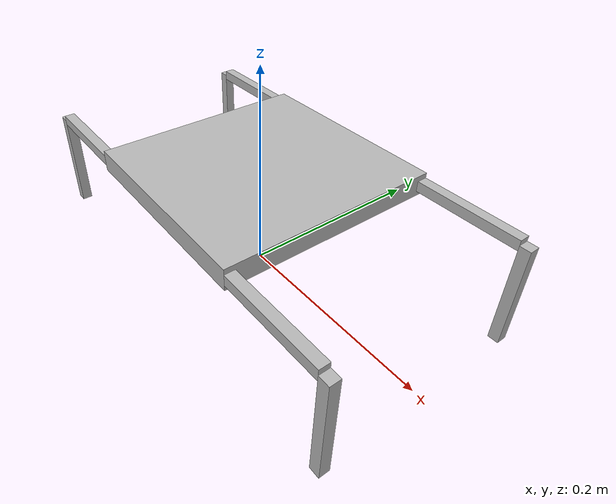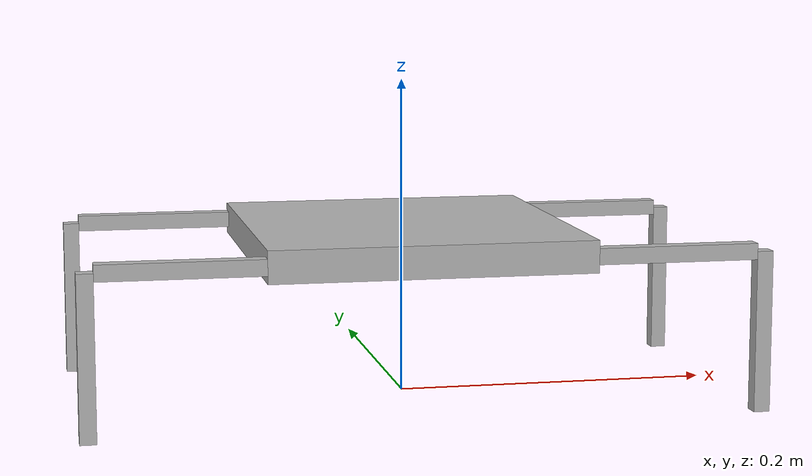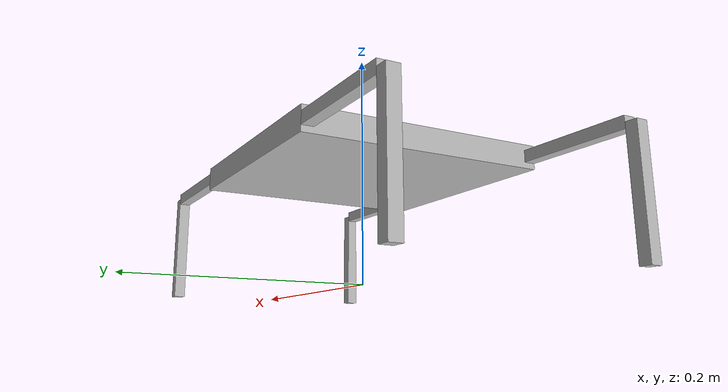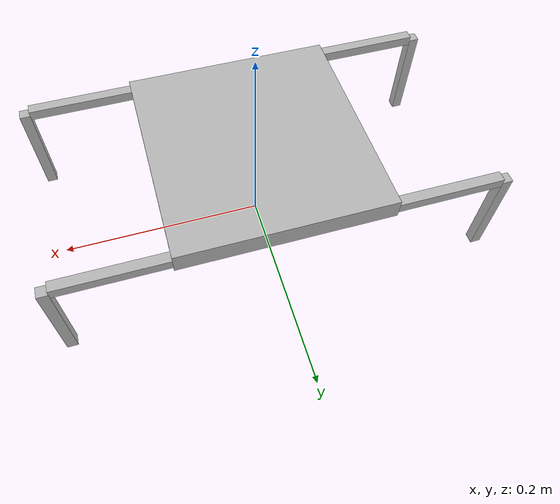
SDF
<?xml version='1.0'?>
<sdf version='1.4'>
  <model name="crawler_robot">
    <static>true</static>

        <link name='chassis'>
        <pose>0 0 .1 0 0 0</pose>
        <inertial>
                <pose>0 0 0 0 0 0</pose>
                <inertia>
                    <ixx>0.0</ixx>
                    <ixy>0</ixy>
                    <ixz>0</ixz>
                    <iyy>0.01</iyy>
                    <iyz>0</iyz>
                    <izz>0.0</izz>
                </inertia>
                <mass>1.0</mass>
            </inertial>

        <collision name='collision'>
            <geometry>
            <box>
                <size>.2 .2 .02</size>
            </box>
            </geometry>
        </collision>

        <visual name='visual'>
            <geometry>
            <box>
                <size>.2 .21 .02</size>
            </box>
            </geometry>
        </visual>
        </link>
        <link name='leftback_leg1'>
        <pose>0.15 -0.1 .1 0 0 0</pose>

        <collision name='collision'>
            <geometry>
            <box>
                <size>.1 .01 .01</size>
            </box>
            </geometry>
        </collision>

        <visual name='visual'>
            <geometry>
            <box>
                <size>.1 .01 .01</size>
            </box>
            </geometry>
        </visual>

        </link>
        <link name='leftback_leg2'>
        <pose>0.205 -0.10 .05 0 0 0</pose>

        <collision name='collision'>
            <geometry>
            <box>
                <size>.01 .01 .1</size>
            </box>
            </geometry>
        </collision>

        <visual name='visual'>
            <geometry>
            <box>
                <size>.01 .01 .1</size>
            </box>
            </geometry>
        </visual>
        </link>
        <link name='leftfront_leg1'>
        <pose>0.15 0.10 .1 0 0 0</pose>

        <collision name='collision'>
            <geometry>
            <box>
                <size>.1 .01 .01</size>
            </box>
            </geometry>
        </collision>

        <visual name='visual'>
            <geometry>
            <box>
                <size>.1 .01 .01</size>
            </box>
            </geometry>
        </visual>
        </link>
        <link name='leftfront_leg2'>
        <pose>0.205 0.10 .05 0 0 0</pose>

        <collision name='collision'>
            <geometry>
            <box>
                <size>.01 .01 .1</size>
            </box>
            </geometry>
        </collision>

        <visual name='visual'>
            <geometry>
            <box>
                <size>.01 .01 .1</size>
            </box>
            </geometry>
        </visual>
        </link>
        <link name='rightfront_leg1'>
        <pose>-0.15 0.10 .1 0 0 0</pose>

        <collision name='collision'>
            <geometry>
            <box>
                <size>.1 .01 .01</size>
            </box>
            </geometry>
        </collision>

        <visual name='visual'>
            <geometry>
            <box>
                <size>.1 .01 .01</size>
            </box>
            </geometry>
        </visual>
        </link>
        <link name='rightfront_leg2'>
        <pose>-0.205 0.10 .05 0 0 0</pose>

        <collision name='collision'>
            <geometry>
            <box>
                <size>.01 .01 .1</size>
            </box>
            </geometry>
        </collision>

        <visual name='visual'>
            <geometry>
            <box>
                <size>.01 .01 .1</size>
            </box>
            </geometry>
        </visual>
        </link>
        <link name='rightback_leg1'>
        <pose>-0.15 -0.10 .1 0 0 0</pose>

        <collision name='collision'>
            <geometry>
            <box>
                <size>.1 .01 .01</size>
            </box>
            </geometry>
        </collision>

        <visual name='visual'>
            <geometry>
            <box>
                <size>.1 .01 .01</size>
            </box>
            </geometry>
        </visual>
        </link>
        <link name='rightback_leg2'>
        <pose>-0.205 -0.10 .05 0 0 0</pose>

        <collision name='collision'>
            <geometry>
            <box>
                <size>.01 .01 .1</size>
            </box>
            </geometry>
        </collision>

        <visual name='visual'>
            <geometry>
            <box>
                <size>.01 .01 .1</size>
            </box>
            </geometry>
        </visual>
        </link>
        <joint type="revolute" name="leftback_leg1_to_body">
           <pose>0.15 -0.1 .1 0 0 0</pose>
           <child>leftback_leg1</child>
           <parent>chassis</parent>
           <axis>
             <xyz>0 0 1</xyz>
           </axis>
         </joint>
         <joint type="revolute" name="leftback_leg1_to_leftback_leg2">
            <pose>0 0 0 0 0 0</pose>
            <child>leftback_leg2</child>
            <parent>leftback_leg1</parent>
            <axis>
              <xyz>0 1 0</xyz>
            </axis>
          </joint>
          <joint type="revolute" name="leftfront_leg1_to_body">
             <pose>0 0 0 0 0 0</pose>
             <child>leftfront_leg1</child>
             <parent>chassis</parent>
             <axis>
               <xyz>0 0 1</xyz>
             </axis>
           </joint>
           <joint type="revolute" name="leftfront_leg1_to_leftfront_leg2">
              <pose>0 0 0 0 0 0</pose>
              <child>leftfront_leg2</child>
              <parent>leftfront_leg1</parent>
              <axis>
                <xyz>0 1 0</xyz>
              </axis>
            </joint>
            <joint type="revolute" name="rightback_leg1_to_body">
               <pose>0 0 0 0 0 0</pose>
               <child>rightback_leg1</child>
               <parent>chassis</parent>
               <axis>
                 <xyz>0 0 1</xyz>
               </axis>
             </joint>
             <joint type="revolute" name="rightback_leg1_to_rightback_leg2">
                <pose>0 0 0 0 0 0</pose>
                <child>rightback_leg2</child>
                <parent>rightback_leg1</parent>
                <axis>
                  <xyz>0 1 0</xyz>
                </axis>
              </joint>
              <joint type="revolute" name="rightfront_leg1_to_body">
                 <pose>0 0 0 0 0 0</pose>
                 <child>rightfront_leg1</child>
                 <parent>chassis</parent>
                 <axis>
                   <xyz>0 0 1</xyz>
                 </axis>
               </joint>
               <joint type="revolute" name="rightfront_leg1_to_rightfront_leg2">
                  <pose>0 0 0 0 0 0</pose>
                  <child>rightfront_leg2</child>
                  <parent>rightfront_leg1</parent>
                  <axis>
                    <xyz>0 1 0</xyz>
                  </axis>
                </joint>

  </model>
</sdf>
